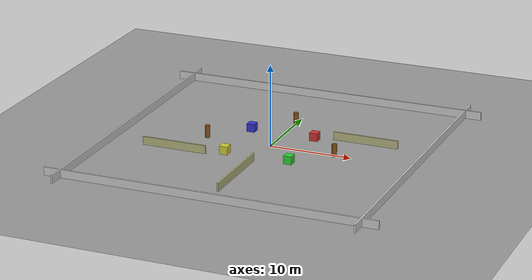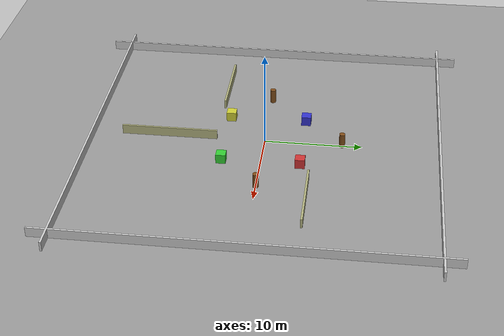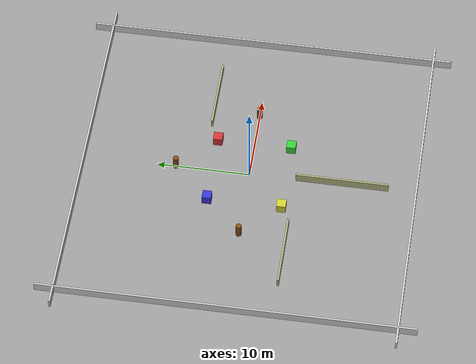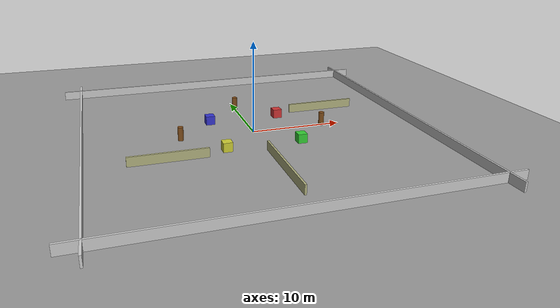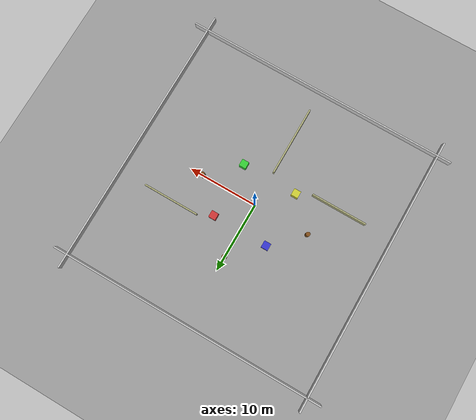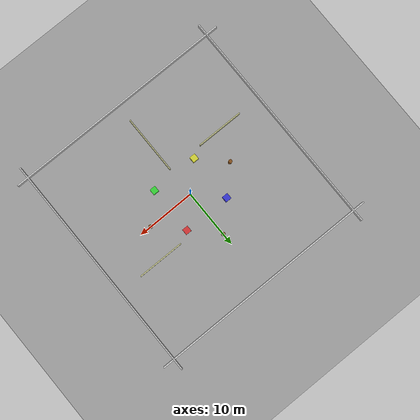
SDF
<?xml version="1.0" ?>
<!--
  my_world.sdf – Eigene Welt für my_robot in Gazebo Ionic
  Enthält: Boden, Beleuchtung, Wände, Hindernisse, Bereiche
-->
<sdf version="1.10">
  <world name="my_world">

    <!--  SYSTEM PLUGINS (Pflicht für Gazebo Ionic)              -->
    <plugin filename="gz-sim-physics-system"
            name="gz::sim::systems::Physics"/>
    <plugin filename="gz-sim-sensors-system"
            name="gz::sim::systems::Sensors">
      <render_engine>ogre</render_engine>
    </plugin>
    <plugin filename="gz-sim-scene-broadcaster-system"
            name="gz::sim::systems::SceneBroadcaster"/>
    <plugin filename="gz-sim-user-commands-system"
            name="gz::sim::systems::UserCommands"/>
    <plugin filename="gz-sim-contact-system"
            name="gz::sim::systems::Contact"/>

    <!--  PHYSIK                                                  -->
    <physics name="default_physics" type="ignored">
      <max_step_size>0.001</max_step_size>
      <real_time_factor>1.0</real_time_factor>
      <real_time_update_rate>1000</real_time_update_rate>
    </physics>

    <!--  BELEUCHTUNG                                             -->
    <light name="sun" type="directional">
      <pose>0 0 20 0 0.5 0</pose>
      <cast_shadows>true</cast_shadows>
      <diffuse>0.9 0.9 0.9 1</diffuse>
      <specular>0.3 0.3 0.3 1</specular>
      <attenuation>
        <range>1000</range>
        <constant>0.9</constant>
        <linear>0.01</linear>
        <quadratic>0.001</quadratic>
      </attenuation>
      <direction>-0.5 0.5 -1</direction>
    </light>

    <!-- Ambient Licht -->
    <ambient>0.4 0.4 0.4 1</ambient>
    <background>0.7 0.8 1.0 1</background>

    <!--  BODEN (20x20m Fläche)                                  -->
    <model name="ground_plane">
      <static>true</static>
      <link name="link">
        <collision name="collision">
          <geometry>
            <plane>
              <normal>0 0 1</normal>
              <size>40 40</size>
            </plane>
          </geometry>
          <surface>
            <friction>
              <ode>
                <mu>1.0</mu>
                <mu2>1.0</mu2>
              </ode>
            </friction>
          </surface>
        </collision>
        <visual name="visual">
          <geometry>
            <plane>
              <normal>0 0 1</normal>
              <size>40 40</size>
            </plane>
          </geometry>
          <material>
            <ambient>0.6 0.6 0.6 1</ambient>
            <diffuse>0.6 0.6 0.6 1</diffuse>
          </material>
        </visual>
      </link>
    </model>

    <!--  AUSSENWÄNDE (schließen die Arena ein)                    -->

    <!-- Wand Nord -->
    <model name="wall_north">
      <static>true</static>
      <pose>0 18 0.5 0 0 0</pose>
      <link name="link">
        <collision name="collision">
          <geometry><box><size>40 0.2 1.0</size></box></geometry>
        </collision>
        <visual name="visual">
          <geometry><box><size>40 0.2 1.0</size></box></geometry>
          <material><ambient>0.8 0.8 0.8 1</ambient></material>
        </visual>
      </link>
    </model>

    <!-- Wand Süd -->
    <model name="wall_south">
      <static>true</static>
      <pose>0 -18 0.5 0 0 0</pose>
      <link name="link">
        <collision name="collision">
          <geometry><box><size>40 0.2 1.0</size></box></geometry>
        </collision>
        <visual name="visual">
          <geometry><box><size>40 0.2 1.0</size></box></geometry>
          <material><ambient>0.8 0.8 0.8 1</ambient></material>
        </visual>
      </link>
    </model>

    <!-- Wand Ost -->
    <model name="wall_east">
      <static>true</static>
      <pose>18 0 0.5 0 0 0</pose>
      <link name="link">
        <collision name="collision">
          <geometry><box><size>0.2 40 1.0</size></box></geometry>
        </collision>
        <visual name="visual">
          <geometry><box><size>0.2 40 1.0</size></box></geometry>
          <material><ambient>0.8 0.8 0.8 1</ambient></material>
        </visual>
      </link>
    </model>

    <!-- Wand West -->
    <model name="wall_west">
      <static>true</static>
      <pose>-18 0 0.5 0 0 0</pose>
      <link name="link">
        <collision name="collision">
          <geometry><box><size>0.2 40 1.0</size></box></geometry>
        </collision>
        <visual name="visual">
          <geometry><box><size>0.2 40 1.0</size></box></geometry>
          <material><ambient>0.8 0.8 0.8 1</ambient></material>
        </visual>
      </link>
    </model>

    <!--  HINDERNISSE – Box-Objekte                              -->

    <model name="box_1">
      <static>true</static>
      <pose>4 4 0.5 0 0 0</pose>
      <link name="link">
        <collision name="collision"><geometry><box><size>1.0 1.0 1.0</size></box></geometry></collision>
        <visual name="visual">
          <geometry><box><size>1.0 1.0 1.0</size></box></geometry>
          <material><ambient>0.8 0.2 0.2 1</ambient></material>
        </visual>
      </link>
    </model>

    <model name="box_2">
      <static>true</static>
      <pose>-4 4 0.5 0 0 0</pose>
      <link name="link">
        <collision name="collision"><geometry><box><size>1.0 1.0 1.0</size></box></geometry></collision>
        <visual name="visual">
          <geometry><box><size>1.0 1.0 1.0</size></box></geometry>
          <material><ambient>0.2 0.2 0.8 1</ambient></material>
        </visual>
      </link>
    </model>

    <model name="box_3">
      <static>true</static>
      <pose>4 -4 0.5 0 0 0</pose>
      <link name="link">
        <collision name="collision"><geometry><box><size>1.0 1.0 1.0</size></box></geometry></collision>
        <visual name="visual">
          <geometry><box><size>1.0 1.0 1.0</size></box></geometry>
          <material><ambient>0.2 0.8 0.2 1</ambient></material>
        </visual>
      </link>
    </model>

    <model name="box_4">
      <static>true</static>
      <pose>-4 -4 0.5 0 0 0</pose>
      <link name="link">
        <collision name="collision"><geometry><box><size>1.0 1.0 1.0</size></box></geometry></collision>
        <visual name="visual">
          <geometry><box><size>1.0 1.0 1.0</size></box></geometry>
          <material><ambient>0.8 0.8 0.2 1</ambient></material>
        </visual>
      </link>
    </model>

    <!--  HINDERNISSE – Zylinder-Objekte (Säulen)                -->

    <model name="pillar_1">
      <static>true</static>
      <pose>8 0 0.75 0 0 0</pose>
      <link name="link">
        <collision name="collision"><geometry><cylinder><radius>0.3</radius><length>1.5</length></cylinder></geometry></collision>
        <visual name="visual">
          <geometry><cylinder><radius>0.3</radius><length>1.5</length></cylinder></geometry>
          <material><ambient>0.5 0.3 0.1 1</ambient></material>
        </visual>
      </link>
    </model>

    <model name="pillar_2">
      <static>true</static>
      <pose>-8 0 0.75 0 0 0</pose>
      <link name="link">
        <collision name="collision"><geometry><cylinder><radius>0.3</radius><length>1.5</length></cylinder></geometry></collision>
        <visual name="visual">
          <geometry><cylinder><radius>0.3</radius><length>1.5</length></cylinder></geometry>
          <material><ambient>0.5 0.3 0.1 1</ambient></material>
        </visual>
      </link>
    </model>

    <model name="pillar_3">
      <static>true</static>
      <pose>0 8 0.75 0 0 0</pose>
      <link name="link">
        <collision name="collision"><geometry><cylinder><radius>0.3</radius><length>1.5</length></cylinder></geometry></collision>
        <visual name="visual">
          <geometry><cylinder><radius>0.3</radius><length>1.5</length></cylinder></geometry>
          <material><ambient>0.5 0.3 0.1 1</ambient></material>
        </visual>
      </link>
    </model>

    <!--  INNENWAND / Korridor für Navigation-Tests              -->

    <model name="inner_wall_1">
      <static>true</static>
      <pose>10 5 0.5 0 0 0</pose>
      <link name="link">
        <collision name="collision"><geometry><box><size>8.0 0.2 1.0</size></box></geometry></collision>
        <visual name="visual">
          <geometry><box><size>8.0 0.2 1.0</size></box></geometry>
          <material><ambient>0.7 0.7 0.5 1</ambient></material>
        </visual>
      </link>
    </model>

    <model name="inner_wall_2">
      <static>true</static>
      <pose>-10 -5 0.5 0 0 0</pose>
      <link name="link">
        <collision name="collision"><geometry><box><size>8.0 0.2 1.0</size></box></geometry></collision>
        <visual name="visual">
          <geometry><box><size>8.0 0.2 1.0</size></box></geometry>
          <material><ambient>0.7 0.7 0.5 1</ambient></material>
        </visual>
      </link>
    </model>

    <model name="inner_wall_3">
      <static>true</static>
      <pose>0 -10 0.5 0 0 1.5708</pose>
      <link name="link">
        <collision name="collision"><geometry><box><size>10.0 0.2 1.0</size></box></geometry></collision>
        <visual name="visual">
          <geometry><box><size>10.0 0.2 1.0</size></box></geometry>
          <material><ambient>0.7 0.7 0.5 1</ambient></material>
        </visual>
      </link>
    </model>

  </world>
</sdf>
